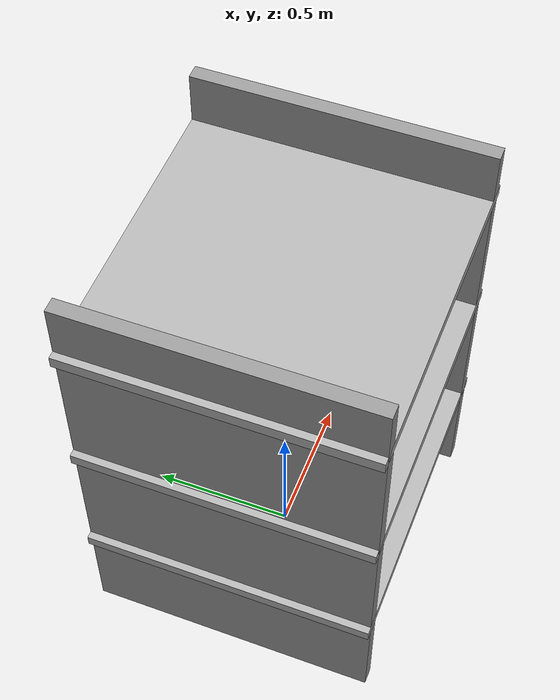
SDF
<?xml version="1.0" ?>
<sdf version="1.9">
  <model name="shelf_simple">
    <static>true</static>

    <link name="upright_left">
      <pose>-0.5 0 0.8 0 0 0</pose>
      <visual name="v">
        <geometry><box><size>0.05 1.0 1.6</size></box></geometry>
        <material><ambient>0.6 0.6 0.6 1</ambient><diffuse>0.6 0.6 0.6 1</diffuse></material>
      </visual>
      <collision name="c"><geometry><box><size>0.05 1.0 1.6</size></box></geometry></collision>
    </link>

    <link name="upright_right">
      <pose>0.5 0 0.8 0 0 0</pose>
      <visual name="v">
        <geometry><box><size>0.05 1.0 1.6</size></box></geometry>
        <material><ambient>0.6 0.6 0.6 1</ambient><diffuse>0.6 0.6 0.6 1</diffuse></material>
      </visual>
      <collision name="c"><geometry><box><size>0.05 1.0 1.6</size></box></geometry></collision>
    </link>

    <link name="shelf1">
      <pose>0 0 1.4 0 0 0</pose>
      <visual name="v">
        <geometry><box><size>1.1 1.0 0.04</size></box></geometry>
        <material><ambient>0.7 0.7 0.7 1</ambient><diffuse>0.7 0.7 0.7 1</diffuse></material>
      </visual>
      <collision name="c"><geometry><box><size>1.1 1.0 0.04</size></box></geometry></collision>
    </link>

    <link name="shelf2">
      <pose>0 0 0.9 0 0 0</pose>
      <visual name="v">
        <geometry><box><size>1.1 1.0 0.04</size></box></geometry>
        <material><ambient>0.7 0.7 0.7 1</ambient><diffuse>0.7 0.7 0.7 1</diffuse></material>
      </visual>
      <collision name="c"><geometry><box><size>1.1 1.0 0.04</size></box></geometry></collision>
    </link>

    <link name="shelf3">
      <pose>0 0 0.4 0 0 0</pose>
      <visual name="v">
        <geometry><box><size>1.1 1.0 0.04</size></box></geometry>
        <material><ambient>0.7 0.7 0.7 1</ambient><diffuse>0.7 0.7 0.7 1</diffuse></material>
      </visual>
      <collision name="c"><geometry><box><size>1.1 1.0 0.04</size></box></geometry></collision>
    </link>
  </model>
</sdf>
